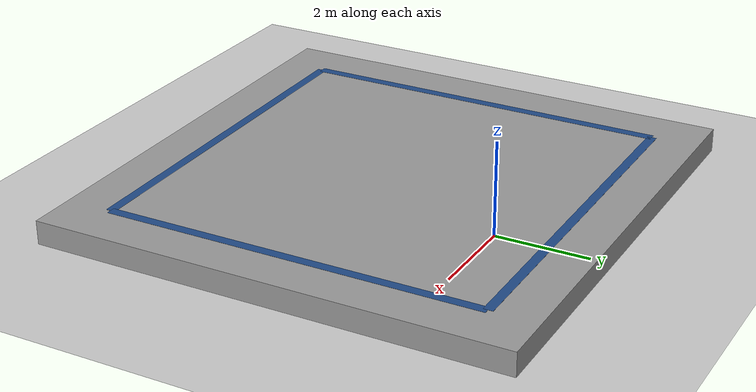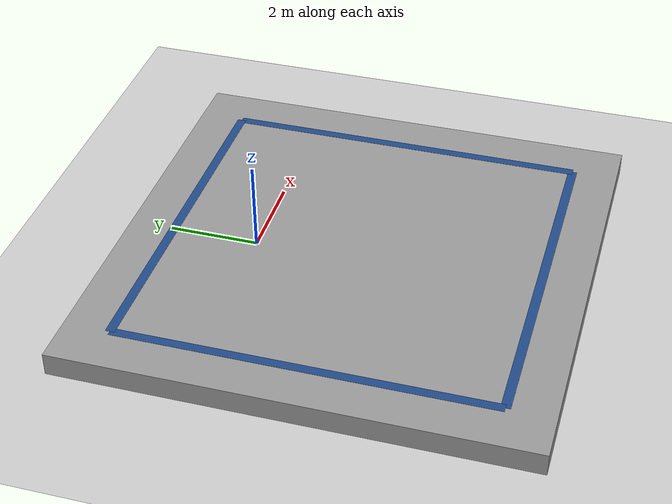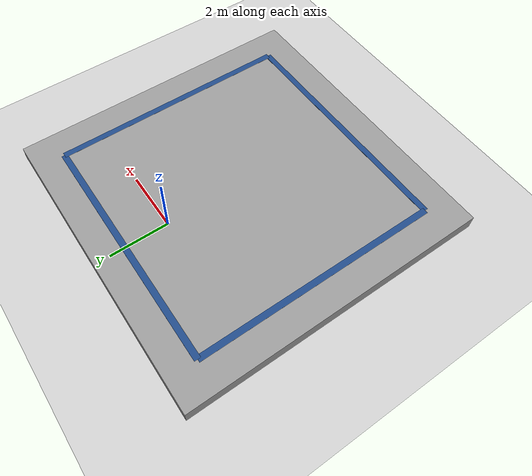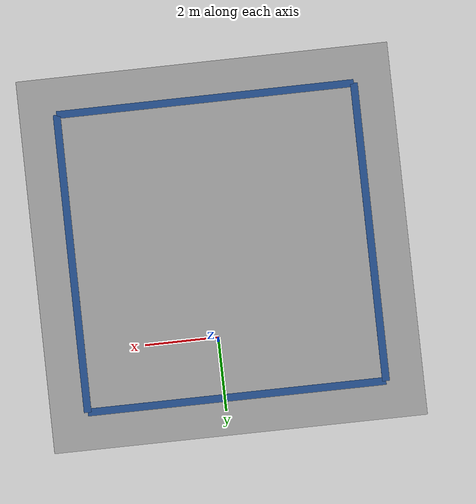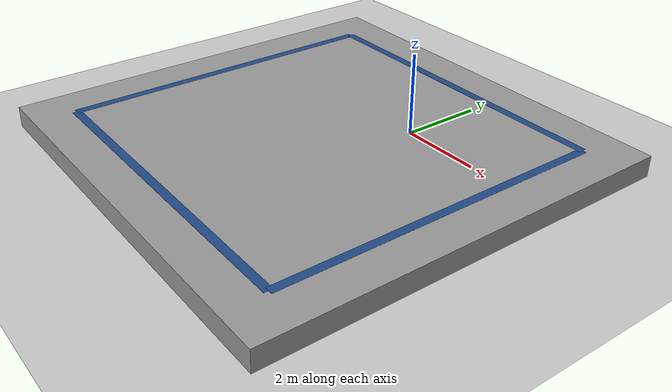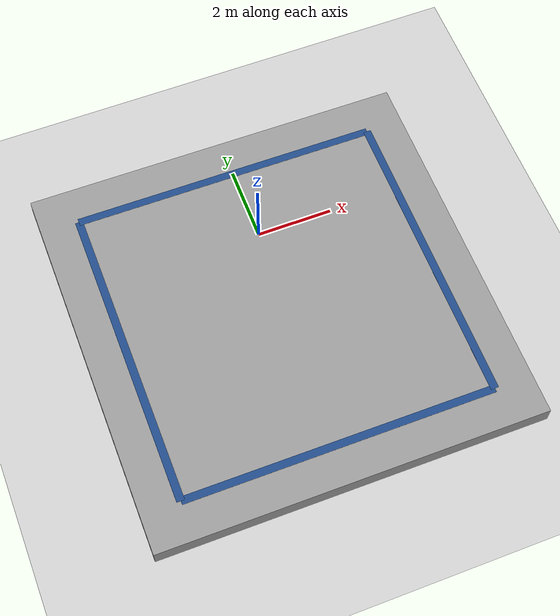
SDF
<?xml version='1.0'?>
<sdf version='1.7'>
  <world name="default">

    <!-- A global light source -->
    <include>
      <uri>model://sun</uri>
    </include>

    <!-- A ground plane -->
    <include>
      <uri>model://ground_plane</uri>
    </include>

  <model name='plane'>
    <link name='link_0'>
      <inertial>
        <mass>1</mass>
        <inertia>
          <ixx>0</ixx>
          <ixy>0</ixy>
          <ixz>0</ixz>
          <iyy>0</iyy>
          <iyz>0</iyz>
          <izz>0</izz>
        </inertia>
        <pose>0 0 0 0 -0 0</pose>
      </inertial>
      <pose>-0.3292 -2.41667 0.429429 0 0.009661 0</pose>
      <gravity>1</gravity>
      <self_collide>0</self_collide>
      <kinematic>0</kinematic>
      <enable_wind>0</enable_wind>
      <visual name='visual'>
        <pose>0 0 0 0 -0 0</pose>
        <geometry>
          <box>
            <size>10 10 0.5</size>
          </box>
        </geometry>
        <material>
          <lighting>1</lighting>
          <script>
            <uri>file://media/materials/scripts/gazebo.material</uri>
            <name>Gazebo/Grey</name>
          </script>
          <shader type='pixel'>
            <normal_map>__default__</normal_map>
          </shader>
          <ambient>1 1 1 1</ambient>
          <diffuse>1 1 1 1</diffuse>
          <specular>1 1 1 1</specular>
          <emissive>0 0 0 1</emissive>
        </material>
        <transparency>0</transparency>
        <cast_shadows>1</cast_shadows>
      </visual>
      <collision name='collision'>
        <laser_retro>0</laser_retro>
        <max_contacts>10</max_contacts>
        <pose>0 0 0 0 -0 0</pose>
        <geometry>
          <box>
            <size>10 10 0.5</size>
          </box>
        </geometry>
        <surface>
          <friction>
            <ode>
              <mu>1</mu>
              <mu2>1</mu2>
              <fdir1>0 0 0</fdir1>
              <slip1>0</slip1>
              <slip2>0</slip2>
            </ode>
            <torsional>
              <coefficient>1</coefficient>
              <patch_radius>0</patch_radius>
              <surface_radius>0</surface_radius>
              <use_patch_radius>1</use_patch_radius>
              <ode>
                <slip>0</slip>
              </ode>
            </torsional>
          </friction>
          <bounce>
            <restitution_coefficient>0</restitution_coefficient>
            <threshold>1e+06</threshold>
          </bounce>
          <contact>
            <collide_without_contact>0</collide_without_contact>
            <collide_without_contact_bitmask>1</collide_without_contact_bitmask>
            <collide_bitmask>1</collide_bitmask>
            <ode>
              <soft_cfm>0</soft_cfm>
              <soft_erp>0.2</soft_erp>
              <kp>1e+13</kp>
              <kd>1</kd>
              <max_vel>0.01</max_vel>
              <min_depth>0</min_depth>
            </ode>
            <bullet>
              <split_impulse>1</split_impulse>
              <split_impulse_penetration_threshold>-0.01</split_impulse_penetration_threshold>
              <soft_cfm>0</soft_cfm>
              <soft_erp>0.2</soft_erp>
              <kp>1e+13</kp>
              <kd>1</kd>
            </bullet>
          </contact>
        </surface>
      </collision>
    </link>
    <link name='link_0_0'>
      <inertial>
        <mass>1</mass>
        <inertia>
          <ixx>0.166667</ixx>
          <ixy>0</ixy>
          <ixz>0</ixz>
          <iyy>0.166667</iyy>
          <iyz>0</iyz>
          <izz>0.166667</izz>
        </inertia>
        <pose>0 0 0 0 -0 0</pose>
      </inertial>
      <pose>-0.326785 -6.41667 0.679417 0 0.009661 0</pose>
      <gravity>1</gravity>
      <self_collide>0</self_collide>
      <kinematic>0</kinematic>
      <enable_wind>0</enable_wind>
      <visual name='visual'>
        <pose>0 0 0 0 -0 0</pose>
        <geometry>
          <box>
            <size>8 0.2 0.005</size>
          </box>
        </geometry>
        <material>
          <lighting>1</lighting>
          <script>
            <uri>file://media/materials/scripts/gazebo.material</uri>
            <name>Gazebo/Grey</name>
          </script>
          <shader type='pixel'>
            <normal_map>__default__</normal_map>
          </shader>
          <ambient>0.125 0.29 0.529 1</ambient>
          <diffuse>0.125 0.29 0.529 1</diffuse>
          <specular>0.125 0.29 0.529 1</specular>
          <emissive>0.125 0.29 0.529 1</emissive>
        </material>
        <transparency>0</transparency>
        <cast_shadows>1</cast_shadows>
      </visual>
      <collision name='collision'>
        <laser_retro>0</laser_retro>
        <max_contacts>10</max_contacts>
        <pose>0 0 0 0 -0 0</pose>
        <geometry>
          <box>
            <size>8 0.2 0.005</size>
          </box>
        </geometry>
        <surface>
          <friction>
            <ode>
              <mu>1</mu>
              <mu2>1</mu2>
              <fdir1>0 0 0</fdir1>
              <slip1>0</slip1>
              <slip2>0</slip2>
            </ode>
            <torsional>
              <coefficient>1</coefficient>
              <patch_radius>0</patch_radius>
              <surface_radius>0</surface_radius>
              <use_patch_radius>1</use_patch_radius>
              <ode>
                <slip>0</slip>
              </ode>
            </torsional>
          </friction>
          <bounce>
            <restitution_coefficient>0</restitution_coefficient>
            <threshold>1e+06</threshold>
          </bounce>
          <contact>
            <collide_without_contact>0</collide_without_contact>
            <collide_without_contact_bitmask>1</collide_without_contact_bitmask>
            <collide_bitmask>1</collide_bitmask>
            <ode>
              <soft_cfm>0</soft_cfm>
              <soft_erp>0.2</soft_erp>
              <kp>1e+13</kp>
              <kd>1</kd>
              <max_vel>0.01</max_vel>
              <min_depth>0</min_depth>
            </ode>
            <bullet>
              <split_impulse>1</split_impulse>
              <split_impulse_penetration_threshold>-0.01</split_impulse_penetration_threshold>
              <soft_cfm>0</soft_cfm>
              <soft_erp>0.2</soft_erp>
              <kp>1e+13</kp>
              <kd>1</kd>
            </bullet>
          </contact>
        </surface>
      </collision>
    </link>
    <link name='link_0_0_clone'>
      <inertial>
        <mass>1</mass>
        <inertia>
          <ixx>0.166667</ixx>
          <ixy>0</ixy>
          <ixz>0</ixz>
          <iyy>0.166667</iyy>
          <iyz>0</iyz>
          <izz>0.166667</izz>
        </inertia>
        <pose>0 0 0 0 -0 0</pose>
      </inertial>
      <pose>-0.326785 1.58333 0.679417 0 0.009661 0</pose>
      <gravity>1</gravity>
      <self_collide>0</self_collide>
      <kinematic>0</kinematic>
      <enable_wind>0</enable_wind>
      <visual name='visual'>
        <pose>0 0 0 0 -0 0</pose>
        <geometry>
          <box>
            <size>8 0.2 0.005</size>
          </box>
        </geometry>
        <material>
          <lighting>1</lighting>
          <script>
            <uri>file://media/materials/scripts/gazebo.material</uri>
            <name>Gazebo/Grey</name>
          </script>
          <shader type='pixel'>
            <normal_map>__default__</normal_map>
          </shader>
          <ambient>0.125 0.29 0.529 1</ambient>
          <diffuse>0.125 0.29 0.529 1</diffuse>
          <specular>0.125 0.29 0.529 1</specular>
          <emissive>0.125 0.29 0.529 1</emissive>
        </material>
        <transparency>0</transparency>
        <cast_shadows>1</cast_shadows>
      </visual>
      <collision name='collision'>
        <laser_retro>0</laser_retro>
        <max_contacts>10</max_contacts>
        <pose>0 0 0 0 -0 0</pose>
        <geometry>
          <box>
            <size>8 0.2 0.005</size>
          </box>
        </geometry>
        <surface>
          <friction>
            <ode>
              <mu>1</mu>
              <mu2>1</mu2>
              <fdir1>0 0 0</fdir1>
              <slip1>0</slip1>
              <slip2>0</slip2>
            </ode>
            <torsional>
              <coefficient>1</coefficient>
              <patch_radius>0</patch_radius>
              <surface_radius>0</surface_radius>
              <use_patch_radius>1</use_patch_radius>
              <ode>
                <slip>0</slip>
              </ode>
            </torsional>
          </friction>
          <bounce>
            <restitution_coefficient>0</restitution_coefficient>
            <threshold>1e+06</threshold>
          </bounce>
          <contact>
            <collide_without_contact>0</collide_without_contact>
            <collide_without_contact_bitmask>1</collide_without_contact_bitmask>
            <collide_bitmask>1</collide_bitmask>
            <ode>
              <soft_cfm>0</soft_cfm>
              <soft_erp>0.2</soft_erp>
              <kp>1e+13</kp>
              <kd>1</kd>
              <max_vel>0.01</max_vel>
              <min_depth>0</min_depth>
            </ode>
            <bullet>
              <split_impulse>1</split_impulse>
              <split_impulse_penetration_threshold>-0.01</split_impulse_penetration_threshold>
              <soft_cfm>0</soft_cfm>
              <soft_erp>0.2</soft_erp>
              <kp>1e+13</kp>
              <kd>1</kd>
            </bullet>
          </contact>
        </surface>
      </collision>
    </link>
    <link name='link_0_0_clone_0'>
      <inertial>
        <mass>1</mass>
        <inertia>
          <ixx>0.166667</ixx>
          <ixy>0</ixy>
          <ixz>0</ixz>
          <iyy>0.166667</iyy>
          <iyz>0</iyz>
          <izz>0.166667</izz>
        </inertia>
        <pose>0 0 0 0 -0 0</pose>
      </inertial>
      <pose>3.67303 -2.41667 0.640774 0.009661 8e-06 1.57</pose>
      <gravity>1</gravity>
      <self_collide>0</self_collide>
      <kinematic>0</kinematic>
      <enable_wind>0</enable_wind>
      <visual name='visual'>
        <pose>0 0 0 0 -0 0</pose>
        <geometry>
          <box>
            <size>8 0.2 0.005</size>
          </box>
        </geometry>
        <material>
          <lighting>1</lighting>
          <script>
            <uri>file://media/materials/scripts/gazebo.material</uri>
            <name>Gazebo/Grey</name>
          </script>
          <shader type='pixel'>
            <normal_map>__default__</normal_map>
          </shader>
          <ambient>0.125 0.29 0.529 1</ambient>
          <diffuse>0.125 0.29 0.529 1</diffuse>
          <specular>0.125 0.29 0.529 1</specular>
          <emissive>0.125 0.29 0.529 1</emissive>
        </material>
        <transparency>0</transparency>
        <cast_shadows>1</cast_shadows>
      </visual>
      <collision name='collision'>
        <laser_retro>0</laser_retro>
        <max_contacts>10</max_contacts>
        <pose>0 0 0 0 -0 0</pose>
        <geometry>
          <box>
            <size>8 0.2 0.005</size>
          </box>
        </geometry>
        <surface>
          <friction>
            <ode>
              <mu>1</mu>
              <mu2>1</mu2>
              <fdir1>0 0 0</fdir1>
              <slip1>0</slip1>
              <slip2>0</slip2>
            </ode>
            <torsional>
              <coefficient>1</coefficient>
              <patch_radius>0</patch_radius>
              <surface_radius>0</surface_radius>
              <use_patch_radius>1</use_patch_radius>
              <ode>
                <slip>0</slip>
              </ode>
            </torsional>
          </friction>
          <bounce>
            <restitution_coefficient>0</restitution_coefficient>
            <threshold>1e+06</threshold>
          </bounce>
          <contact>
            <collide_without_contact>0</collide_without_contact>
            <collide_without_contact_bitmask>1</collide_without_contact_bitmask>
            <collide_bitmask>1</collide_bitmask>
            <ode>
              <soft_cfm>0</soft_cfm>
              <soft_erp>0.2</soft_erp>
              <kp>1e+13</kp>
              <kd>1</kd>
              <max_vel>0.01</max_vel>
              <min_depth>0</min_depth>
            </ode>
            <bullet>
              <split_impulse>1</split_impulse>
              <split_impulse_penetration_threshold>-0.01</split_impulse_penetration_threshold>
              <soft_cfm>0</soft_cfm>
              <soft_erp>0.2</soft_erp>
              <kp>1e+13</kp>
              <kd>1</kd>
            </bullet>
          </contact>
        </surface>
      </collision>
    </link>
    <link name='link_0_0_clone_1'>
      <inertial>
        <mass>1</mass>
        <inertia>
          <ixx>0.166667</ixx>
          <ixy>0</ixy>
          <ixz>0</ixz>
          <iyy>0.166667</iyy>
          <iyz>0</iyz>
          <izz>0.166667</izz>
        </inertia>
        <pose>0 0 0 0 -0 0</pose>
      </inertial>
      <pose>-4.3266 -2.41667 0.718061 0.009661 8e-06 1.57</pose>
      <gravity>1</gravity>
      <self_collide>0</self_collide>
      <kinematic>0</kinematic>
      <enable_wind>0</enable_wind>
      <visual name='visual'>
        <pose>0 0 0 0 -0 0</pose>
        <geometry>
          <box>
            <size>8 0.2 0.005</size>
          </box>
        </geometry>
        <material>
          <lighting>1</lighting>
          <script>
            <uri>file://media/materials/scripts/gazebo.material</uri>
            <name>Gazebo/Grey</name>
          </script>
          <shader type='pixel'>
            <normal_map>__default__</normal_map>
          </shader>
          <ambient>0.125 0.29 0.529 1</ambient>
          <diffuse>0.125 0.29 0.529 1</diffuse>
          <specular>0.125 0.29 0.529 1</specular>
          <emissive>0.125 0.29 0.529 1</emissive>
        </material>
        <transparency>0</transparency>
        <cast_shadows>1</cast_shadows>
      </visual>
      <collision name='collision'>
        <laser_retro>0</laser_retro>
        <max_contacts>10</max_contacts>
        <pose>0 0 0 0 -0 0</pose>
        <geometry>
          <box>
            <size>8 0.2 0.005</size>
          </box>
        </geometry>
        <surface>
          <friction>
            <ode>
              <mu>1</mu>
              <mu2>1</mu2>
              <fdir1>0 0 0</fdir1>
              <slip1>0</slip1>
              <slip2>0</slip2>
            </ode>
            <torsional>
              <coefficient>1</coefficient>
              <patch_radius>0</patch_radius>
              <surface_radius>0</surface_radius>
              <use_patch_radius>1</use_patch_radius>
              <ode>
                <slip>0</slip>
              </ode>
            </torsional>
          </friction>
          <bounce>
            <restitution_coefficient>0</restitution_coefficient>
            <threshold>1e+06</threshold>
          </bounce>
          <contact>
            <collide_without_contact>0</collide_without_contact>
            <collide_without_contact_bitmask>1</collide_without_contact_bitmask>
            <collide_bitmask>1</collide_bitmask>
            <ode>
              <soft_cfm>0</soft_cfm>
              <soft_erp>0.2</soft_erp>
              <kp>1e+13</kp>
              <kd>1</kd>
              <max_vel>0.01</max_vel>
              <min_depth>0</min_depth>
            </ode>
            <bullet>
              <split_impulse>1</split_impulse>
              <split_impulse_penetration_threshold>-0.01</split_impulse_penetration_threshold>
              <soft_cfm>0</soft_cfm>
              <soft_erp>0.2</soft_erp>
              <kp>1e+13</kp>
              <kd>1</kd>
            </bullet>
          </contact>
        </surface>
      </collision>
    </link>
    <joint name='link_0_JOINT_0' type='fixed'>
      <parent>link_0</parent>
      <child>link_0_0</child>
      <pose>0 0 0 0 -0 0</pose>
      <physics>
        <ode>
          <limit>
            <cfm>0</cfm>
            <erp>0.2</erp>
          </limit>
          <suspension>
            <cfm>0</cfm>
            <erp>0.2</erp>
          </suspension>
        </ode>
      </physics>
    </joint>
    <joint name='link_0_JOINT_1' type='fixed'>
      <parent>link_0</parent>
      <child>link_0_0_clone</child>
      <pose>0 0 0 0 -0 0</pose>
      <physics>
        <ode>
          <limit>
            <cfm>0</cfm>
            <erp>0.2</erp>
          </limit>
          <suspension>
            <cfm>0</cfm>
            <erp>0.2</erp>
          </suspension>
        </ode>
      </physics>
    </joint>
    <joint name='link_0_JOINT_2' type='fixed'>
      <parent>link_0</parent>
      <child>link_0_0_clone_0</child>
      <pose>0 0 0 0 -0 0</pose>
      <physics>
        <ode>
          <limit>
            <cfm>0</cfm>
            <erp>0.2</erp>
          </limit>
          <suspension>
            <cfm>0</cfm>
            <erp>0.2</erp>
          </suspension>
        </ode>
      </physics>
    </joint>
    <joint name='link_0_JOINT_3' type='fixed'>
      <parent>link_0</parent>
      <child>link_0_0_clone_1</child>
      <pose>0 0 0 0 -0 0</pose>
      <physics>
        <ode>
          <limit>
            <cfm>0</cfm>
            <erp>0.2</erp>
          </limit>
          <suspension>
            <cfm>0</cfm>
            <erp>0.2</erp>
          </suspension>
        </ode>
      </physics>
    </joint>
    <static>0</static>
    <allow_auto_disable>1</allow_auto_disable>
  </model>

  </world>
</sdf>
